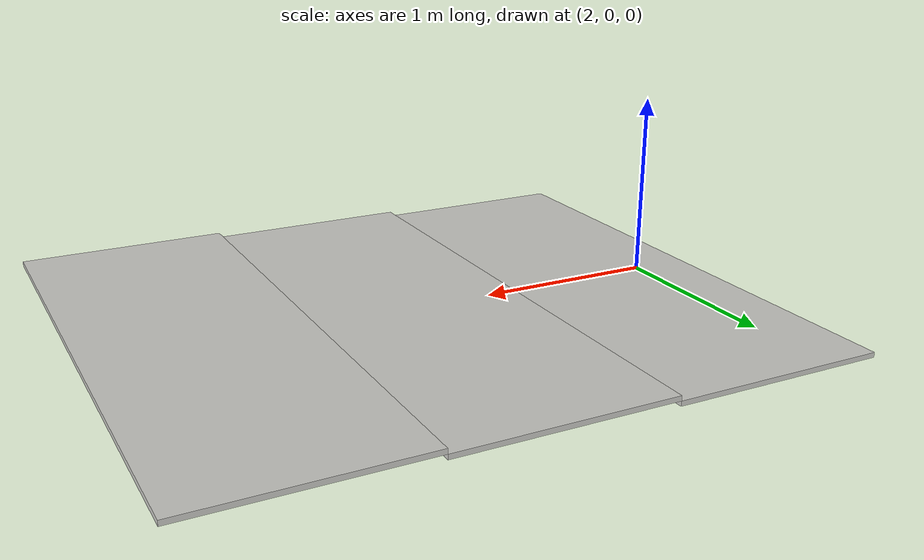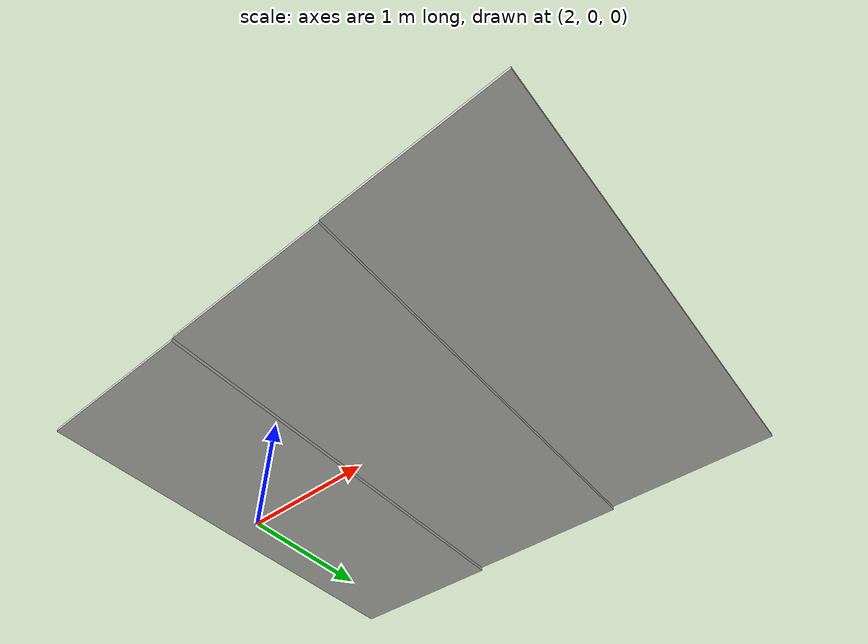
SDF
<?xml version='1.0'?>
<sdf version='1.7'>
  <model name='waao_world'>
    <pose>2.6174 0.030417 0 0 -0 0</pose>
    <link name='Stairs_4'>
      <visual name='Stairs_4_Visual_0'>
        <pose>-0.299272 -0 0.013333 0 -0 1.5708</pose>
        <geometry>
          <box>
            <size>3 1.16667 0.026667</size>
          </box>
        </geometry>
        <material>
          <script>
            <uri>file://media/materials/scripts/gazebo.material</uri>
            <name>Gazebo/CeilingTiled</name>
          </script>
          <ambient>0.996078 0.47451 0.0196078 1</ambient>
        </material>
        <meta>
          <layer>0</layer>
        </meta>
      </visual>
      <collision name='Stairs_4_Collision_0'>
        <geometry>
          <box>
            <size>3 1.16667 0.026667</size>
          </box>
        </geometry>
        <pose>-0.299272 -0 0.013333 0 -0 1.5708</pose>
      </collision>
      <visual name='Stairs_4_Visual_1'>
        <pose>0.867395 0 0.04 0 -0 1.5708</pose>
        <geometry>
          <box>
            <size>3 1.16667 0.026667</size>
          </box>
        </geometry>
        <material>
          <script>
            <uri>file://media/materials/scripts/gazebo.material</uri>
            <name>Gazebo/CeilingTiled</name>
          </script>
          <ambient>0.996078 0.47451 0.0196078 1</ambient>
        </material>
        <meta>
          <layer>0</layer>
        </meta>
      </visual>
      <collision name='Stairs_4_Collision_1'>
        <geometry>
          <box>
            <size>3 1.16667 0.026667</size>
          </box>
        </geometry>
        <pose>0.867395 0 0.04 0 -0 1.5708</pose>
      </collision>
      <visual name='Stairs_4_Visual_2'>
        <pose>2.03406 0 0.066667 0 -0 1.5708</pose>
        <geometry>
          <box>
            <size>3 1.16667 0.026667</size>
          </box>
        </geometry>
        <material>
          <script>
            <uri>file://media/materials/scripts/gazebo.material</uri>
            <name>Gazebo/CeilingTiled</name>
          </script>
          <ambient>0.996078 0.47451 0.0196078 1</ambient>
        </material>
        <meta>
          <layer>0</layer>
        </meta>
      </visual>
      <collision name='Stairs_4_Collision_2'>
        <geometry>
          <box>
            <size>3 1.16667 0.026667</size>
          </box>
        </geometry>
        <pose>2.03406 0 0.066667 0 -0 1.5708</pose>
      </collision>
    </link>
    <static>1</static>
  </model>
</sdf>
